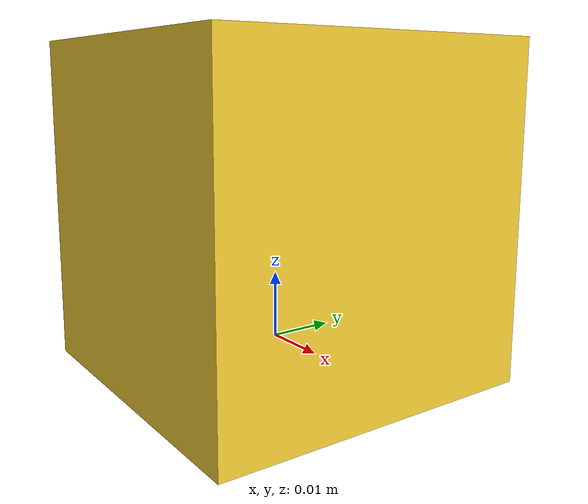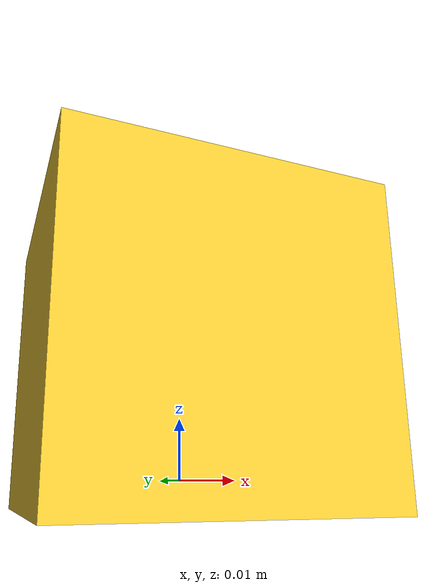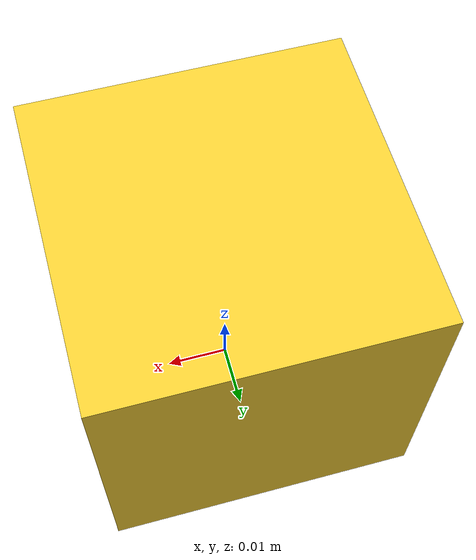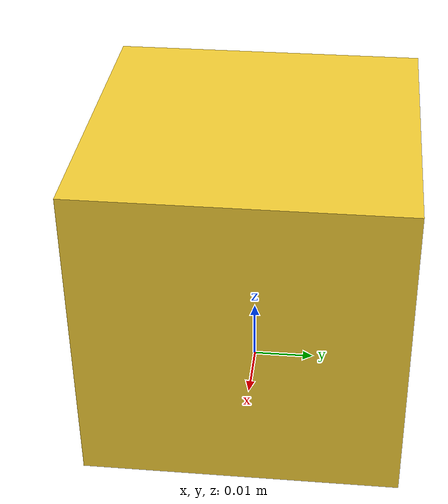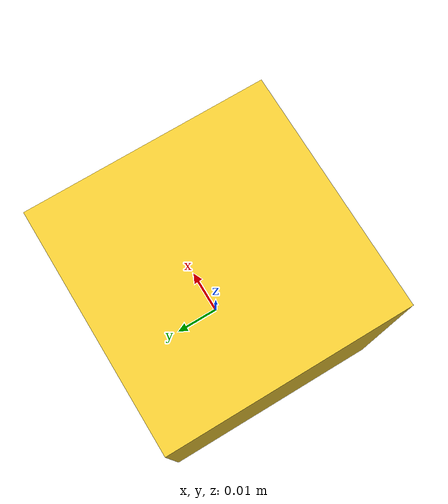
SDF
<?xml version='1.0'?>
<sdf version='1.9'>
  <model name='cube'>
  <static>false</static>
  <pose>0.0 0.0 0.02 0.0 0.0 0</pose>
    <!-- Add a base link (can be minimal) -->
    <link name='base_link'>
      <inertial>
        <mass>0.001</mass>
        <inertia>
          <ixx>1e-9</ixx>
          <ixy>0</ixy>
          <ixz>0</ixz>
          <iyy>1e-9</iyy>
          <iyz>0</iyz>
          <izz>1e-9</izz>
        </inertia>
      </inertial>
    </link>

    <link name='cube_link'>
    <velocity>0 0 0 0 0 0</velocity>
      <inertial>
        <mass>0.02</mass> <!-- Mass of the cube in kg -->
        <inertia>
          <ixx>4.1667e-06</ixx> <!-- Inertia around x-axis -->
          <ixy>0.0</ixy>
          <ixz>0.0</ixz>
          <iyy>4.1667e-06</iyy> <!-- Inertia around y-axis -->
          <iyz>0.0</iyz>
          <izz>4.1667e-06</izz> <!-- Inertia around z-axis -->
        </inertia>
      </inertial>
      <gravity>1</gravity>
      <self_collide>0</self_collide>
      <kinematic>0</kinematic>
      <enable_wind>0</enable_wind>
      <visual name='visual'>
        <geometry>
          <box>
            <size>0.05 0.05 0.05</size>
          </box>
        </geometry>
         <material>
          <ambient>0.85 0.72 0.1 1</ambient>  <!-- 直接设置环境光颜色 -->
          <diffuse>0.95 0.80 0.2 1</diffuse>  <!-- 增强漫反射亮度 -->
        </material>
      </visual>
      <collision name='collision'>
      <max_contacts>10</max_contacts>
        <geometry>
          <box>
            <size>0.05 0.05 0.05</size>
          </box>
        </geometry>
         <surface>
          <friction>
            <ode>
            <mu>1.0</mu>
            <mu2>0.8</mu2>
            </ode>
         </friction>
          </surface>
      </collision>
    </link>

    <!-- Add a joint connecting base_link and cube_link -->
    <joint name='link_0_joint' type='revolute'>
      <parent>base_link</parent>
      <child>cube_link</child> <!-- Changed from link_0 to cube_link -->
      <pose>0 0 0 0 0 0</pose>
      <axis>
        <xyz>0 0 1</xyz>
        <limit>
          <lower>-3.14159</lower>
          <upper>3.14159</upper>
          <effort>10.0</effort>
          <velocity>1.0</velocity>
        </limit>
        <dynamics>
          <damping>0.1</damping>
        </dynamics>
      </axis>
    </joint>

    <!-- Pose Publisher Plugin (no changes needed here) -->
    <plugin filename="libignition-gazebo-pose-publisher-system.so"
          name="ignition::gazebo::systems::PosePublisher">
        <publish_model_pose>true</publish_model_pose>
        <publish_link_pose>false</publish_link_pose>
        <publish_nested_model_pose>true</publish_nested_model_pose>
        <use_pose_vector_msg>false</use_pose_vector_msg>
        <update_frequency>30</update_frequency>
        <static_publisher>false</static_publisher>
    </plugin>

    <!-- Commented out plugin - make sure it's properly commented -->

  </model>
</sdf>
